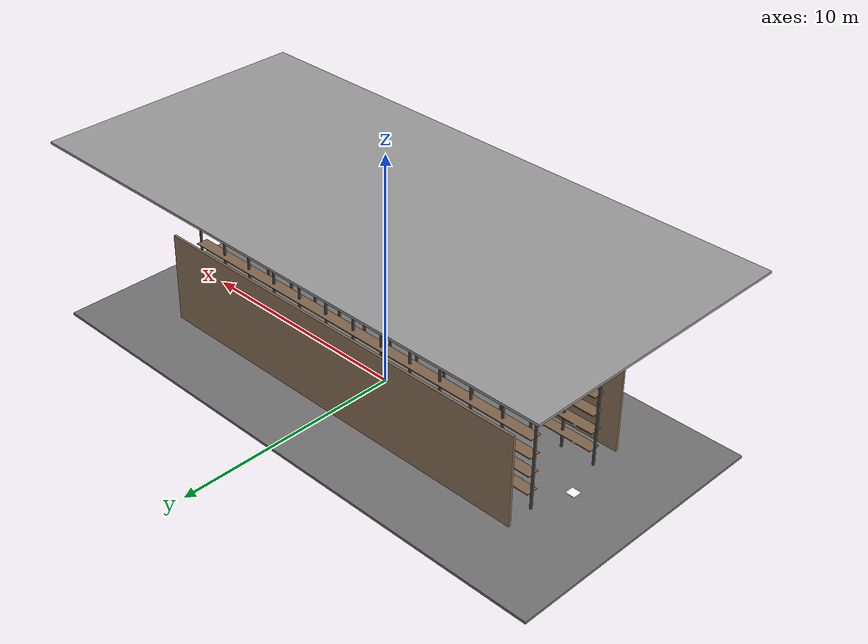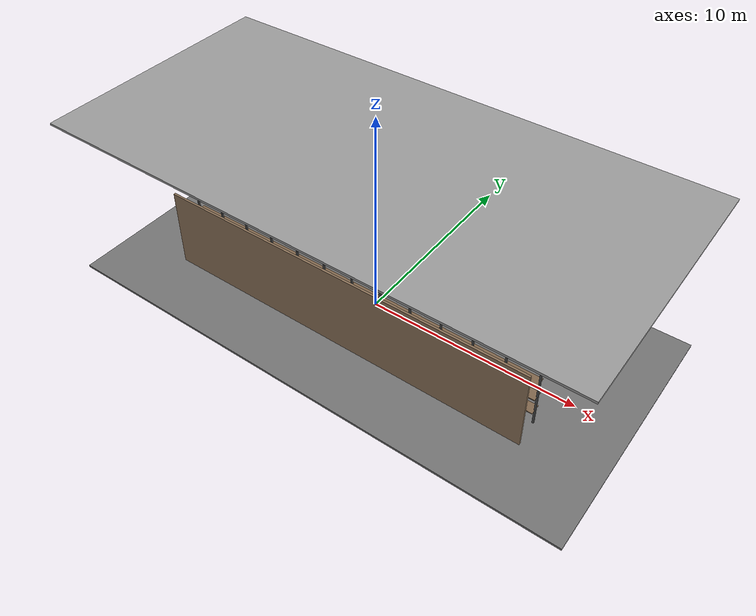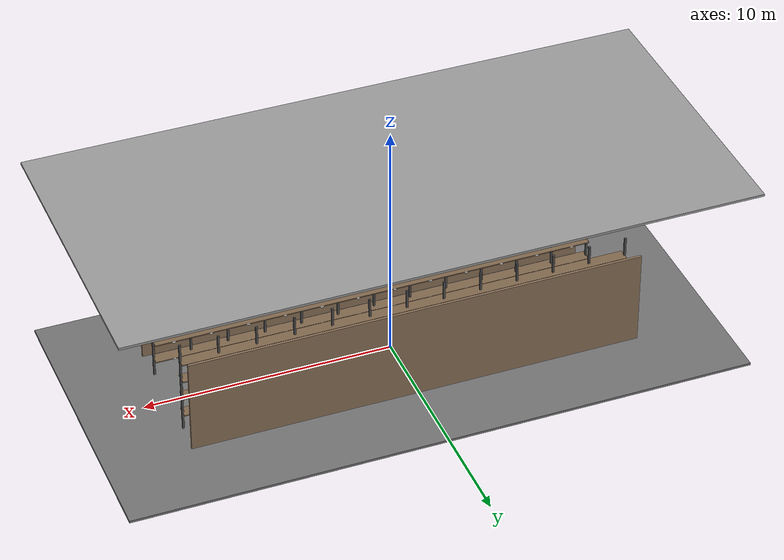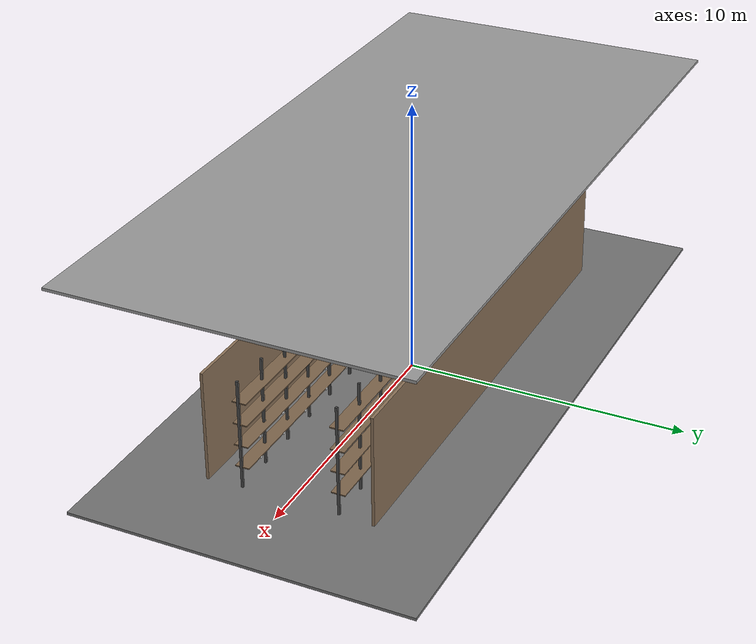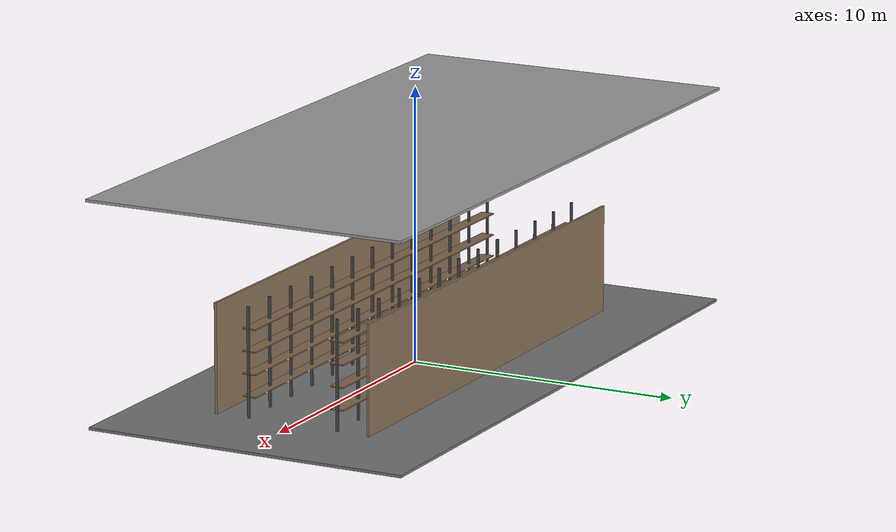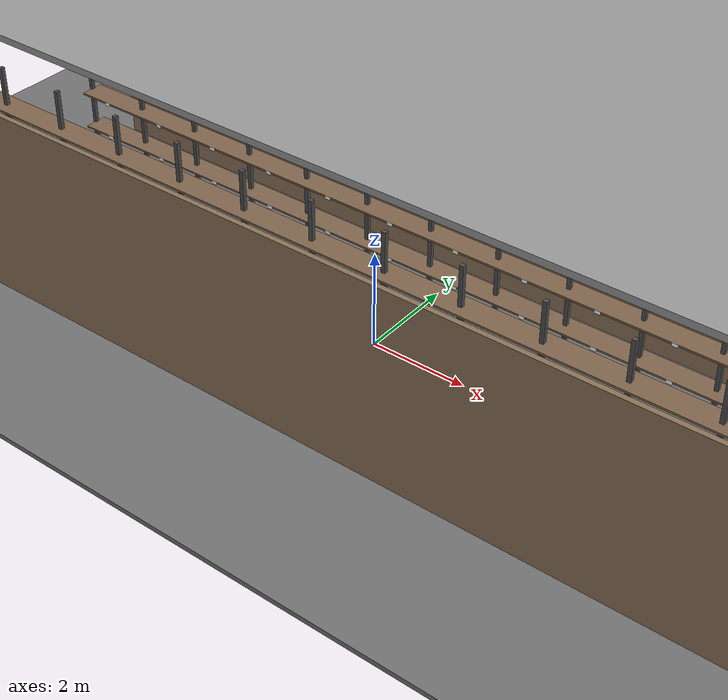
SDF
<?xml version="1.0" ?>
<sdf version="1.9">
  <world name="warehouse_phase0">

    <!-- ФИЗИКА -->
    <physics name="1ms" type="ignored">
      <max_step_size>0.001</max_step_size>
      <real_time_factor>1.0</real_time_factor>
    </physics>

    <gravity>0 0 -9.8</gravity>
    <magnetic_field>6e-06 2.3e-05 -4.2e-05</magnetic_field>
    <atmosphere type="adiabatic"/>

    <spherical_coordinates>
      <surface_model>EARTH_WGS84</surface_model>
      <world_frame_orientation>ENU</world_frame_orientation>
      <latitude_deg>47.397971057728974</latitude_deg>
      <longitude_deg>8.546163739800146</longitude_deg>
      <elevation>0</elevation>
    </spherical_coordinates>

    <!-- ПЛАГИНЫ -->
    <plugin filename="gz-sim-physics-system" name="gz::sim::systems::Physics"/>
    <plugin filename="gz-sim-user-commands-system" name="gz::sim::systems::UserCommands"/>
    <plugin filename="gz-sim-scene-broadcaster-system" name="gz::sim::systems::SceneBroadcaster"/>
    <plugin filename="gz-sim-sensors-system" name="gz::sim::systems::Sensors">
      <render_engine>ogre2</render_engine>
    </plugin>
    <plugin filename="gz-sim-imu-system" name="gz::sim::systems::Imu"/>
    <plugin filename="gz-sim-magnetometer-system" name="gz::sim::systems::Magnetometer"/>
    <plugin filename="gz-sim-air-pressure-system" name="gz::sim::systems::AirPressure"/>
    <plugin filename="gz-sim-navsat-system" name="gz::sim::systems::NavSat"/>

    <!-- ОСВЕЩЕНИЕ: 3 точечных лампы под потолком + ambient fill -->
    <light name="lamp_start" type="point">
      <pose>-5 0 7.5 0 0 0</pose><cast_shadows>true</cast_shadows><intensity>1.1</intensity>
      <diffuse>0.95 0.95 0.9 1</diffuse><specular>0.3 0.3 0.3 1</specular>
      <attenuation><range>16</range><constant>0.3</constant><linear>0.02</linear><quadratic>0.005</quadratic></attenuation>
    </light>
    <light name="lamp_center" type="point">
      <pose>0 0 7.5 0 0 0</pose><cast_shadows>false</cast_shadows><intensity>1.0</intensity>
      <diffuse>0.9 0.9 0.85 1</diffuse><specular>0.2 0.2 0.2 1</specular>
      <attenuation><range>16</range><constant>0.3</constant><linear>0.02</linear><quadratic>0.005</quadratic></attenuation>
    </light>
    <light name="lamp_end" type="point">
      <pose>5 0 7.5 0 0 0</pose><cast_shadows>false</cast_shadows><intensity>1.0</intensity>
      <diffuse>0.9 0.9 0.85 1</diffuse><specular>0.2 0.2 0.2 1</specular>
      <attenuation><range>16</range><constant>0.3</constant><linear>0.02</linear><quadratic>0.005</quadratic></attenuation>
    </light>
    <light name="ambient_fill" type="directional">
      <pose>0 0 10 0 0 0</pose><cast_shadows>false</cast_shadows><intensity>0.35</intensity>
      <direction>0 0 -1</direction><diffuse>0.55 0.55 0.55 1</diffuse><specular>0.05 0.05 0.05 1</specular>
    </light>

    <!-- ПОЛ 25x12м -->
    <model name="floor"><static>true</static><pose>0 0 0 0 0 0</pose>
      <link name="link">
        <collision name="col"><geometry><box><size>25 12 0.1</size></box></geometry></collision>
        <visual name="vis"><geometry><box><size>25 12 0.1</size></box></geometry>
          <material><ambient>0.35 0.35 0.35 1</ambient><diffuse>0.45 0.45 0.45 1</diffuse></material>
        </visual>
      </link>
    </model>

    <!-- ПОТОЛОК на высоте 8м -->
    <model name="ceiling"><static>true</static><pose>0 0 8 0 0 0</pose>
      <link name="link">
        <collision name="col"><geometry><box><size>25 12 0.1</size></box></geometry></collision>
        <visual name="vis"><geometry><box><size>25 12 0.1</size></box></geometry>
          <material><ambient>0.55 0.55 0.55 1</ambient><diffuse>0.6 0.6 0.6 1</diffuse></material>
        </visual>
      </link>
    </model>

    <!-- ===== ЛЕВЫЙ СТЕЛЛАЖ (Y > 0) ===== -->

    <!-- Задняя стена левого стеллажа -->
    <model name="rack_L_back"><static>true</static><pose>0 2.95 2.0 0 0 0</pose>
      <link name="link">
        <collision name="col"><geometry><box><size>18.2 0.1 4.0</size></box></geometry></collision>
        <visual name="vis"><geometry><box><size>18.2 0.1 4.0</size></box></geometry>
          <material><ambient>0.5 0.4 0.3 1</ambient><diffuse>0.55 0.45 0.35 1</diffuse></material>
        </visual>
      </link>
    </model>

    <!-- Горизонтальные полки левого стеллажа: 4 уровня -->
    <model name="shelf_L1"><static>true</static><pose>0 1.7 0.8 0 0 0</pose><link name="l">
      <collision name="c"><geometry><box><size>18 0.5 0.04</size></box></geometry></collision>
      <visual name="v"><geometry><box><size>18 0.5 0.04</size></box></geometry>
        <material><ambient>0.45 0.35 0.25 1</ambient><diffuse>0.5 0.4 0.3 1</diffuse></material></visual></link></model>
    <model name="shelf_L2"><static>true</static><pose>0 1.7 1.6 0 0 0</pose><link name="l">
      <collision name="c"><geometry><box><size>18 0.5 0.04</size></box></geometry></collision>
      <visual name="v"><geometry><box><size>18 0.5 0.04</size></box></geometry>
        <material><ambient>0.45 0.35 0.25 1</ambient><diffuse>0.5 0.4 0.3 1</diffuse></material></visual></link></model>
    <model name="shelf_L3"><static>true</static><pose>0 1.7 2.4 0 0 0</pose><link name="l">
      <collision name="c"><geometry><box><size>18 0.5 0.04</size></box></geometry></collision>
      <visual name="v"><geometry><box><size>18 0.5 0.04</size></box></geometry>
        <material><ambient>0.45 0.35 0.25 1</ambient><diffuse>0.5 0.4 0.3 1</diffuse></material></visual></link></model>
    <model name="shelf_L4"><static>true</static><pose>0 1.7 3.2 0 0 0</pose><link name="l">
      <collision name="c"><geometry><box><size>18 0.5 0.04</size></box></geometry></collision>
      <visual name="v"><geometry><box><size>18 0.5 0.04</size></box></geometry>
        <material><ambient>0.45 0.35 0.25 1</ambient><diffuse>0.5 0.4 0.3 1</diffuse></material></visual></link></model>

    <!-- Стойки левого стеллажа: 13 шт x шаг 1.5м -->
    <model name="pL0"> <static>true</static><pose>-9.0 1.72 2.0 0 0 0</pose><link name="l"><collision name="c"><geometry><box><size>0.08 0.08 4.0</size></box></geometry></collision><visual name="v"><geometry><box><size>0.08 0.08 4.0</size></box></geometry><material><ambient>0.25 0.25 0.25 1</ambient><diffuse>0.3 0.3 0.3 1</diffuse></material></visual></link></model>
    <model name="pL1"> <static>true</static><pose>-7.5 1.72 2.0 0 0 0</pose><link name="l"><collision name="c"><geometry><box><size>0.08 0.08 4.0</size></box></geometry></collision><visual name="v"><geometry><box><size>0.08 0.08 4.0</size></box></geometry><material><ambient>0.25 0.25 0.25 1</ambient><diffuse>0.3 0.3 0.3 1</diffuse></material></visual></link></model>
    <model name="pL2"> <static>true</static><pose>-6.0 1.72 2.0 0 0 0</pose><link name="l"><collision name="c"><geometry><box><size>0.08 0.08 4.0</size></box></geometry></collision><visual name="v"><geometry><box><size>0.08 0.08 4.0</size></box></geometry><material><ambient>0.25 0.25 0.25 1</ambient><diffuse>0.3 0.3 0.3 1</diffuse></material></visual></link></model>
    <model name="pL3"> <static>true</static><pose>-4.5 1.72 2.0 0 0 0</pose><link name="l"><collision name="c"><geometry><box><size>0.08 0.08 4.0</size></box></geometry></collision><visual name="v"><geometry><box><size>0.08 0.08 4.0</size></box></geometry><material><ambient>0.25 0.25 0.25 1</ambient><diffuse>0.3 0.3 0.3 1</diffuse></material></visual></link></model>
    <model name="pL4"> <static>true</static><pose>-3.0 1.72 2.0 0 0 0</pose><link name="l"><collision name="c"><geometry><box><size>0.08 0.08 4.0</size></box></geometry></collision><visual name="v"><geometry><box><size>0.08 0.08 4.0</size></box></geometry><material><ambient>0.25 0.25 0.25 1</ambient><diffuse>0.3 0.3 0.3 1</diffuse></material></visual></link></model>
    <model name="pL5"> <static>true</static><pose>-1.5 1.72 2.0 0 0 0</pose><link name="l"><collision name="c"><geometry><box><size>0.08 0.08 4.0</size></box></geometry></collision><visual name="v"><geometry><box><size>0.08 0.08 4.0</size></box></geometry><material><ambient>0.25 0.25 0.25 1</ambient><diffuse>0.3 0.3 0.3 1</diffuse></material></visual></link></model>
    <model name="pL6"> <static>true</static><pose> 0.0 1.72 2.0 0 0 0</pose><link name="l"><collision name="c"><geometry><box><size>0.08 0.08 4.0</size></box></geometry></collision><visual name="v"><geometry><box><size>0.08 0.08 4.0</size></box></geometry><material><ambient>0.25 0.25 0.25 1</ambient><diffuse>0.3 0.3 0.3 1</diffuse></material></visual></link></model>
    <model name="pL7"> <static>true</static><pose> 1.5 1.72 2.0 0 0 0</pose><link name="l"><collision name="c"><geometry><box><size>0.08 0.08 4.0</size></box></geometry></collision><visual name="v"><geometry><box><size>0.08 0.08 4.0</size></box></geometry><material><ambient>0.25 0.25 0.25 1</ambient><diffuse>0.3 0.3 0.3 1</diffuse></material></visual></link></model>
    <model name="pL8"> <static>true</static><pose> 3.0 1.72 2.0 0 0 0</pose><link name="l"><collision name="c"><geometry><box><size>0.08 0.08 4.0</size></box></geometry></collision><visual name="v"><geometry><box><size>0.08 0.08 4.0</size></box></geometry><material><ambient>0.25 0.25 0.25 1</ambient><diffuse>0.3 0.3 0.3 1</diffuse></material></visual></link></model>
    <model name="pL9"> <static>true</static><pose> 4.5 1.72 2.0 0 0 0</pose><link name="l"><collision name="c"><geometry><box><size>0.08 0.08 4.0</size></box></geometry></collision><visual name="v"><geometry><box><size>0.08 0.08 4.0</size></box></geometry><material><ambient>0.25 0.25 0.25 1</ambient><diffuse>0.3 0.3 0.3 1</diffuse></material></visual></link></model>
    <model name="pL10"><static>true</static><pose> 6.0 1.72 2.0 0 0 0</pose><link name="l"><collision name="c"><geometry><box><size>0.08 0.08 4.0</size></box></geometry></collision><visual name="v"><geometry><box><size>0.08 0.08 4.0</size></box></geometry><material><ambient>0.25 0.25 0.25 1</ambient><diffuse>0.3 0.3 0.3 1</diffuse></material></visual></link></model>
    <model name="pL11"><static>true</static><pose> 7.5 1.72 2.0 0 0 0</pose><link name="l"><collision name="c"><geometry><box><size>0.08 0.08 4.0</size></box></geometry></collision><visual name="v"><geometry><box><size>0.08 0.08 4.0</size></box></geometry><material><ambient>0.25 0.25 0.25 1</ambient><diffuse>0.3 0.3 0.3 1</diffuse></material></visual></link></model>
    <model name="pL12"><static>true</static><pose> 9.0 1.72 2.0 0 0 0</pose><link name="l"><collision name="c"><geometry><box><size>0.08 0.08 4.0</size></box></geometry></collision><visual name="v"><geometry><box><size>0.08 0.08 4.0</size></box></geometry><material><ambient>0.25 0.25 0.25 1</ambient><diffuse>0.3 0.3 0.3 1</diffuse></material></visual></link></model>

    <!-- Штрихкоды левого стеллажа — уровень 1 (Z=0.8м) -->
            <model name="bcL_1_1"><static>true</static><pose>-8.25 1.43 0.8 0 0 0</pose>
      <link name="l">
        <visual name="v">
          <geometry><box><size>0.12 0.005 0.07</size></box></geometry>
          <material>
            <ambient>1 1 1 1</ambient>
            <diffuse>1 1 1 1</diffuse>
            <pbr>
              <metal>
                <albedo_map>/home/imuzolev/gz_barcodes/barcode_L_01_1.png</albedo_map>
                <metalness>0.0</metalness>
                <roughness>1.0</roughness>
              </metal>
            </pbr>
          </material>
        </visual>
      </link>
    </model>
            <model name="bcL_2_1"><static>true</static><pose>-6.75 1.43 0.8 0 0 0</pose>
      <link name="l">
        <visual name="v">
          <geometry><box><size>0.12 0.005 0.07</size></box></geometry>
          <material>
            <ambient>1 1 1 1</ambient>
            <diffuse>1 1 1 1</diffuse>
            <pbr>
              <metal>
                <albedo_map>/home/imuzolev/gz_barcodes/barcode_L_02_1.png</albedo_map>
                <metalness>0.0</metalness>
                <roughness>1.0</roughness>
              </metal>
            </pbr>
          </material>
        </visual>
      </link>
    </model>
            <model name="bcL_3_1"><static>true</static><pose>-5.25 1.43 0.8 0 0 0</pose>
      <link name="l">
        <visual name="v">
          <geometry><box><size>0.12 0.005 0.07</size></box></geometry>
          <material>
            <ambient>1 1 1 1</ambient>
            <diffuse>1 1 1 1</diffuse>
            <pbr>
              <metal>
                <albedo_map>/home/imuzolev/gz_barcodes/barcode_L_03_1.png</albedo_map>
                <metalness>0.0</metalness>
                <roughness>1.0</roughness>
              </metal>
            </pbr>
          </material>
        </visual>
      </link>
    </model>
            <model name="bcL_4_1"><static>true</static><pose>-3.75 1.43 0.8 0 0 0</pose>
      <link name="l">
        <visual name="v">
          <geometry><box><size>0.12 0.005 0.07</size></box></geometry>
          <material>
            <ambient>1 1 1 1</ambient>
            <diffuse>1 1 1 1</diffuse>
            <pbr>
              <metal>
                <albedo_map>/home/imuzolev/gz_barcodes/barcode_L_04_1.png</albedo_map>
                <metalness>0.0</metalness>
                <roughness>1.0</roughness>
              </metal>
            </pbr>
          </material>
        </visual>
      </link>
    </model>
            <model name="bcL_5_1"><static>true</static><pose>-2.25 1.43 0.8 0 0 0</pose>
      <link name="l">
        <visual name="v">
          <geometry><box><size>0.12 0.005 0.07</size></box></geometry>
          <material>
            <ambient>1 1 1 1</ambient>
            <diffuse>1 1 1 1</diffuse>
            <pbr>
              <metal>
                <albedo_map>/home/imuzolev/gz_barcodes/barcode_L_05_1.png</albedo_map>
                <metalness>0.0</metalness>
                <roughness>1.0</roughness>
              </metal>
            </pbr>
          </material>
        </visual>
      </link>
    </model>
            <model name="bcL_6_1"><static>true</static><pose>-0.75 1.43 0.8 0 0 0</pose>
      <link name="l">
        <visual name="v">
          <geometry><box><size>0.12 0.005 0.07</size></box></geometry>
          <material>
            <ambient>1 1 1 1</ambient>
            <diffuse>1 1 1 1</diffuse>
            <pbr>
              <metal>
                <albedo_map>/home/imuzolev/gz_barcodes/barcode_L_06_1.png</albedo_map>
                <metalness>0.0</metalness>
                <roughness>1.0</roughness>
              </metal>
            </pbr>
          </material>
        </visual>
      </link>
    </model>
            <model name="bcL_7_1"><static>true</static><pose>0.75 1.43 0.8 0 0 0</pose>
      <link name="l">
        <visual name="v">
          <geometry><box><size>0.12 0.005 0.07</size></box></geometry>
          <material>
            <ambient>1 1 1 1</ambient>
            <diffuse>1 1 1 1</diffuse>
            <pbr>
              <metal>
                <albedo_map>/home/imuzolev/gz_barcodes/barcode_L_07_1.png</albedo_map>
                <metalness>0.0</metalness>
                <roughness>1.0</roughness>
              </metal>
            </pbr>
          </material>
        </visual>
      </link>
    </model>
            <model name="bcL_8_1"><static>true</static><pose>2.25 1.43 0.8 0 0 0</pose>
      <link name="l">
        <visual name="v">
          <geometry><box><size>0.12 0.005 0.07</size></box></geometry>
          <material>
            <ambient>1 1 1 1</ambient>
            <diffuse>1 1 1 1</diffuse>
            <pbr>
              <metal>
                <albedo_map>/home/imuzolev/gz_barcodes/barcode_L_08_1.png</albedo_map>
                <metalness>0.0</metalness>
                <roughness>1.0</roughness>
              </metal>
            </pbr>
          </material>
        </visual>
      </link>
    </model>
            <model name="bcL_9_1"><static>true</static><pose>3.75 1.43 0.8 0 0 0</pose>
      <link name="l">
        <visual name="v">
          <geometry><box><size>0.12 0.005 0.07</size></box></geometry>
          <material>
            <ambient>1 1 1 1</ambient>
            <diffuse>1 1 1 1</diffuse>
            <pbr>
              <metal>
                <albedo_map>/home/imuzolev/gz_barcodes/barcode_L_09_1.png</albedo_map>
                <metalness>0.0</metalness>
                <roughness>1.0</roughness>
              </metal>
            </pbr>
          </material>
        </visual>
      </link>
    </model>
            <model name="bcL_10_1"><static>true</static><pose>5.25 1.43 0.8 0 0 0</pose>
      <link name="l">
        <visual name="v">
          <geometry><box><size>0.12 0.005 0.07</size></box></geometry>
          <material>
            <ambient>1 1 1 1</ambient>
            <diffuse>1 1 1 1</diffuse>
            <pbr>
              <metal>
                <albedo_map>/home/imuzolev/gz_barcodes/barcode_L_10_1.png</albedo_map>
                <metalness>0.0</metalness>
                <roughness>1.0</roughness>
              </metal>
            </pbr>
          </material>
        </visual>
      </link>
    </model>
            <model name="bcL_11_1"><static>true</static><pose>6.75 1.43 0.8 0 0 0</pose>
      <link name="l">
        <visual name="v">
          <geometry><box><size>0.12 0.005 0.07</size></box></geometry>
          <material>
            <ambient>1 1 1 1</ambient>
            <diffuse>1 1 1 1</diffuse>
            <pbr>
              <metal>
                <albedo_map>/home/imuzolev/gz_barcodes/barcode_L_11_1.png</albedo_map>
                <metalness>0.0</metalness>
                <roughness>1.0</roughness>
              </metal>
            </pbr>
          </material>
        </visual>
      </link>
    </model>
            <model name="bcL_12_1"><static>true</static><pose>8.25 1.43 0.8 0 0 0</pose>
      <link name="l">
        <visual name="v">
          <geometry><box><size>0.12 0.005 0.07</size></box></geometry>
          <material>
            <ambient>1 1 1 1</ambient>
            <diffuse>1 1 1 1</diffuse>
            <pbr>
              <metal>
                <albedo_map>/home/imuzolev/gz_barcodes/barcode_L_12_1.png</albedo_map>
                <metalness>0.0</metalness>
                <roughness>1.0</roughness>
              </metal>
            </pbr>
          </material>
        </visual>
      </link>
    </model>

    <!-- Штрихкоды левого стеллажа — уровень 2 (Z=1.6м) -->
            <model name="bcL_1_2"><static>true</static><pose>-8.25 1.43 1.6 0 0 0</pose>
      <link name="l">
        <visual name="v">
          <geometry><box><size>0.12 0.005 0.07</size></box></geometry>
          <material>
            <ambient>1 1 1 1</ambient>
            <diffuse>1 1 1 1</diffuse>
            <pbr>
              <metal>
                <albedo_map>/home/imuzolev/gz_barcodes/barcode_L_01_2.png</albedo_map>
                <metalness>0.0</metalness>
                <roughness>1.0</roughness>
              </metal>
            </pbr>
          </material>
        </visual>
      </link>
    </model>
            <model name="bcL_2_2"><static>true</static><pose>-6.75 1.43 1.6 0 0 0</pose>
      <link name="l">
        <visual name="v">
          <geometry><box><size>0.12 0.005 0.07</size></box></geometry>
          <material>
            <ambient>1 1 1 1</ambient>
            <diffuse>1 1 1 1</diffuse>
            <pbr>
              <metal>
                <albedo_map>/home/imuzolev/gz_barcodes/barcode_L_02_2.png</albedo_map>
                <metalness>0.0</metalness>
                <roughness>1.0</roughness>
              </metal>
            </pbr>
          </material>
        </visual>
      </link>
    </model>
            <model name="bcL_3_2"><static>true</static><pose>-5.25 1.43 1.6 0 0 0</pose>
      <link name="l">
        <visual name="v">
          <geometry><box><size>0.12 0.005 0.07</size></box></geometry>
          <material>
            <ambient>1 1 1 1</ambient>
            <diffuse>1 1 1 1</diffuse>
            <pbr>
              <metal>
                <albedo_map>/home/imuzolev/gz_barcodes/barcode_L_03_2.png</albedo_map>
                <metalness>0.0</metalness>
                <roughness>1.0</roughness>
              </metal>
            </pbr>
          </material>
        </visual>
      </link>
    </model>
            <model name="bcL_4_2"><static>true</static><pose>-3.75 1.43 1.6 0 0 0</pose>
      <link name="l">
        <visual name="v">
          <geometry><box><size>0.12 0.005 0.07</size></box></geometry>
          <material>
            <ambient>1 1 1 1</ambient>
            <diffuse>1 1 1 1</diffuse>
            <pbr>
              <metal>
                <albedo_map>/home/imuzolev/gz_barcodes/barcode_L_04_2.png</albedo_map>
                <metalness>0.0</metalness>
                <roughness>1.0</roughness>
              </metal>
            </pbr>
          </material>
        </visual>
      </link>
    </model>
            <model name="bcL_5_2"><static>true</static><pose>-2.25 1.43 1.6 0 0 0</pose>
      <link name="l">
        <visual name="v">
          <geometry><box><size>0.12 0.005 0.07</size></box></geometry>
          <material>
            <ambient>1 1 1 1</ambient>
            <diffuse>1 1 1 1</diffuse>
            <pbr>
              <metal>
                <albedo_map>/home/imuzolev/gz_barcodes/barcode_L_05_2.png</albedo_map>
                <metalness>0.0</metalness>
                <roughness>1.0</roughness>
              </metal>
            </pbr>
          </material>
        </visual>
      </link>
    </model>
            <model name="bcL_6_2"><static>true</static><pose>-0.75 1.43 1.6 0 0 0</pose>
      <link name="l">
        <visual name="v">
          <geometry><box><size>0.12 0.005 0.07</size></box></geometry>
          <material>
            <ambient>1 1 1 1</ambient>
            <diffuse>1 1 1 1</diffuse>
            <pbr>
              <metal>
                <albedo_map>/home/imuzolev/gz_barcodes/barcode_L_06_2.png</albedo_map>
                <metalness>0.0</metalness>
                <roughness>1.0</roughness>
              </metal>
            </pbr>
          </material>
        </visual>
      </link>
    </model>
            <model name="bcL_7_2"><static>true</static><pose>0.75 1.43 1.6 0 0 0</pose>
      <link name="l">
        <visual name="v">
          <geometry><box><size>0.12 0.005 0.07</size></box></geometry>
          <material>
            <ambient>1 1 1 1</ambient>
            <diffuse>1 1 1 1</diffuse>
            <pbr>
              <metal>
                <albedo_map>/home/imuzolev/gz_barcodes/barcode_L_07_2.png</albedo_map>
                <metalness>0.0</metalness>
                <roughness>1.0</roughness>
              </metal>
            </pbr>
          </material>
        </visual>
      </link>
    </model>
            <model name="bcL_8_2"><static>true</static><pose>2.25 1.43 1.6 0 0 0</pose>
      <link name="l">
        <visual name="v">
          <geometry><box><size>0.12 0.005 0.07</size></box></geometry>
          <material>
            <ambient>1 1 1 1</ambient>
            <diffuse>1 1 1 1</diffuse>
            <pbr>
              <metal>
                <albedo_map>/home/imuzolev/gz_barcodes/barcode_L_08_2.png</albedo_map>
                <metalness>0.0</metalness>
                <roughness>1.0</roughness>
              </metal>
            </pbr>
          </material>
        </visual>
      </link>
    </model>
            <model name="bcL_9_2"><static>true</static><pose>3.75 1.43 1.6 0 0 0</pose>
      <link name="l">
        <visual name="v">
          <geometry><box><size>0.12 0.005 0.07</size></box></geometry>
          <material>
            <ambient>1 1 1 1</ambient>
            <diffuse>1 1 1 1</diffuse>
            <pbr>
              <metal>
                <albedo_map>/home/imuzolev/gz_barcodes/barcode_L_09_2.png</albedo_map>
                <metalness>0.0</metalness>
                <roughness>1.0</roughness>
              </metal>
            </pbr>
          </material>
        </visual>
      </link>
    </model>
            <model name="bcL_10_2"><static>true</static><pose>5.25 1.43 1.6 0 0 0</pose>
      <link name="l">
        <visual name="v">
          <geometry><box><size>0.12 0.005 0.07</size></box></geometry>
          <material>
            <ambient>1 1 1 1</ambient>
            <diffuse>1 1 1 1</diffuse>
            <pbr>
              <metal>
                <albedo_map>/home/imuzolev/gz_barcodes/barcode_L_10_2.png</albedo_map>
                <metalness>0.0</metalness>
                <roughness>1.0</roughness>
              </metal>
            </pbr>
          </material>
        </visual>
      </link>
    </model>
            <model name="bcL_11_2"><static>true</static><pose>6.75 1.43 1.6 0 0 0</pose>
      <link name="l">
        <visual name="v">
          <geometry><box><size>0.12 0.005 0.07</size></box></geometry>
          <material>
            <ambient>1 1 1 1</ambient>
            <diffuse>1 1 1 1</diffuse>
            <pbr>
              <metal>
                <albedo_map>/home/imuzolev/gz_barcodes/barcode_L_11_2.png</albedo_map>
                <metalness>0.0</metalness>
                <roughness>1.0</roughness>
              </metal>
            </pbr>
          </material>
        </visual>
      </link>
    </model>
            <model name="bcL_12_2"><static>true</static><pose>8.25 1.43 1.6 0 0 0</pose>
      <link name="l">
        <visual name="v">
          <geometry><box><size>0.12 0.005 0.07</size></box></geometry>
          <material>
            <ambient>1 1 1 1</ambient>
            <diffuse>1 1 1 1</diffuse>
            <pbr>
              <metal>
                <albedo_map>/home/imuzolev/gz_barcodes/barcode_L_12_2.png</albedo_map>
                <metalness>0.0</metalness>
                <roughness>1.0</roughness>
              </metal>
            </pbr>
          </material>
        </visual>
      </link>
    </model>

    <!-- ===== ПРАВЫЙ СТЕЛЛАЖ (Y < 0) ===== -->

    <model name="rack_R_back"><static>true</static><pose>0 -2.95 2.0 0 0 0</pose>
      <link name="link">
        <collision name="col"><geometry><box><size>18.2 0.1 4.0</size></box></geometry></collision>
        <visual name="vis"><geometry><box><size>18.2 0.1 4.0</size></box></geometry>
          <material><ambient>0.5 0.4 0.3 1</ambient><diffuse>0.55 0.45 0.35 1</diffuse></material>
        </visual>
      </link>
    </model>

    <model name="shelf_R1"><static>true</static><pose>0 -1.7 0.8 0 0 0</pose><link name="l">
      <collision name="c"><geometry><box><size>18 0.5 0.04</size></box></geometry></collision>
      <visual name="v"><geometry><box><size>18 0.5 0.04</size></box></geometry>
        <material><ambient>0.45 0.35 0.25 1</ambient><diffuse>0.5 0.4 0.3 1</diffuse></material></visual></link></model>
    <model name="shelf_R2"><static>true</static><pose>0 -1.7 1.6 0 0 0</pose><link name="l">
      <collision name="c"><geometry><box><size>18 0.5 0.04</size></box></geometry></collision>
      <visual name="v"><geometry><box><size>18 0.5 0.04</size></box></geometry>
        <material><ambient>0.45 0.35 0.25 1</ambient><diffuse>0.5 0.4 0.3 1</diffuse></material></visual></link></model>
    <model name="shelf_R3"><static>true</static><pose>0 -1.7 2.4 0 0 0</pose><link name="l">
      <collision name="c"><geometry><box><size>18 0.5 0.04</size></box></geometry></collision>
      <visual name="v"><geometry><box><size>18 0.5 0.04</size></box></geometry>
        <material><ambient>0.45 0.35 0.25 1</ambient><diffuse>0.5 0.4 0.3 1</diffuse></material></visual></link></model>
    <model name="shelf_R4"><static>true</static><pose>0 -1.7 3.2 0 0 0</pose><link name="l">
      <collision name="c"><geometry><box><size>18 0.5 0.04</size></box></geometry></collision>
      <visual name="v"><geometry><box><size>18 0.5 0.04</size></box></geometry>
        <material><ambient>0.45 0.35 0.25 1</ambient><diffuse>0.5 0.4 0.3 1</diffuse></material></visual></link></model>

    <!-- Стойки правого стеллажа: 13 шт -->
    <model name="pR0"> <static>true</static><pose>-9.0 -1.72 2.0 0 0 0</pose><link name="l"><collision name="c"><geometry><box><size>0.08 0.08 4.0</size></box></geometry></collision><visual name="v"><geometry><box><size>0.08 0.08 4.0</size></box></geometry><material><ambient>0.25 0.25 0.25 1</ambient><diffuse>0.3 0.3 0.3 1</diffuse></material></visual></link></model>
    <model name="pR1"> <static>true</static><pose>-7.5 -1.72 2.0 0 0 0</pose><link name="l"><collision name="c"><geometry><box><size>0.08 0.08 4.0</size></box></geometry></collision><visual name="v"><geometry><box><size>0.08 0.08 4.0</size></box></geometry><material><ambient>0.25 0.25 0.25 1</ambient><diffuse>0.3 0.3 0.3 1</diffuse></material></visual></link></model>
    <model name="pR2"> <static>true</static><pose>-6.0 -1.72 2.0 0 0 0</pose><link name="l"><collision name="c"><geometry><box><size>0.08 0.08 4.0</size></box></geometry></collision><visual name="v"><geometry><box><size>0.08 0.08 4.0</size></box></geometry><material><ambient>0.25 0.25 0.25 1</ambient><diffuse>0.3 0.3 0.3 1</diffuse></material></visual></link></model>
    <model name="pR3"> <static>true</static><pose>-4.5 -1.72 2.0 0 0 0</pose><link name="l"><collision name="c"><geometry><box><size>0.08 0.08 4.0</size></box></geometry></collision><visual name="v"><geometry><box><size>0.08 0.08 4.0</size></box></geometry><material><ambient>0.25 0.25 0.25 1</ambient><diffuse>0.3 0.3 0.3 1</diffuse></material></visual></link></model>
    <model name="pR4"> <static>true</static><pose>-3.0 -1.72 2.0 0 0 0</pose><link name="l"><collision name="c"><geometry><box><size>0.08 0.08 4.0</size></box></geometry></collision><visual name="v"><geometry><box><size>0.08 0.08 4.0</size></box></geometry><material><ambient>0.25 0.25 0.25 1</ambient><diffuse>0.3 0.3 0.3 1</diffuse></material></visual></link></model>
    <model name="pR5"> <static>true</static><pose>-1.5 -1.72 2.0 0 0 0</pose><link name="l"><collision name="c"><geometry><box><size>0.08 0.08 4.0</size></box></geometry></collision><visual name="v"><geometry><box><size>0.08 0.08 4.0</size></box></geometry><material><ambient>0.25 0.25 0.25 1</ambient><diffuse>0.3 0.3 0.3 1</diffuse></material></visual></link></model>
    <model name="pR6"> <static>true</static><pose> 0.0 -1.72 2.0 0 0 0</pose><link name="l"><collision name="c"><geometry><box><size>0.08 0.08 4.0</size></box></geometry></collision><visual name="v"><geometry><box><size>0.08 0.08 4.0</size></box></geometry><material><ambient>0.25 0.25 0.25 1</ambient><diffuse>0.3 0.3 0.3 1</diffuse></material></visual></link></model>
    <model name="pR7"> <static>true</static><pose> 1.5 -1.72 2.0 0 0 0</pose><link name="l"><collision name="c"><geometry><box><size>0.08 0.08 4.0</size></box></geometry></collision><visual name="v"><geometry><box><size>0.08 0.08 4.0</size></box></geometry><material><ambient>0.25 0.25 0.25 1</ambient><diffuse>0.3 0.3 0.3 1</diffuse></material></visual></link></model>
    <model name="pR8"> <static>true</static><pose> 3.0 -1.72 2.0 0 0 0</pose><link name="l"><collision name="c"><geometry><box><size>0.08 0.08 4.0</size></box></geometry></collision><visual name="v"><geometry><box><size>0.08 0.08 4.0</size></box></geometry><material><ambient>0.25 0.25 0.25 1</ambient><diffuse>0.3 0.3 0.3 1</diffuse></material></visual></link></model>
    <model name="pR9"> <static>true</static><pose> 4.5 -1.72 2.0 0 0 0</pose><link name="l"><collision name="c"><geometry><box><size>0.08 0.08 4.0</size></box></geometry></collision><visual name="v"><geometry><box><size>0.08 0.08 4.0</size></box></geometry><material><ambient>0.25 0.25 0.25 1</ambient><diffuse>0.3 0.3 0.3 1</diffuse></material></visual></link></model>
    <model name="pR10"><static>true</static><pose> 6.0 -1.72 2.0 0 0 0</pose><link name="l"><collision name="c"><geometry><box><size>0.08 0.08 4.0</size></box></geometry></collision><visual name="v"><geometry><box><size>0.08 0.08 4.0</size></box></geometry><material><ambient>0.25 0.25 0.25 1</ambient><diffuse>0.3 0.3 0.3 1</diffuse></material></visual></link></model>
    <model name="pR11"><static>true</static><pose> 7.5 -1.72 2.0 0 0 0</pose><link name="l"><collision name="c"><geometry><box><size>0.08 0.08 4.0</size></box></geometry></collision><visual name="v"><geometry><box><size>0.08 0.08 4.0</size></box></geometry><material><ambient>0.25 0.25 0.25 1</ambient><diffuse>0.3 0.3 0.3 1</diffuse></material></visual></link></model>
    <model name="pR12"><static>true</static><pose> 9.0 -1.72 2.0 0 0 0</pose><link name="l"><collision name="c"><geometry><box><size>0.08 0.08 4.0</size></box></geometry></collision><visual name="v"><geometry><box><size>0.08 0.08 4.0</size></box></geometry><material><ambient>0.25 0.25 0.25 1</ambient><diffuse>0.3 0.3 0.3 1</diffuse></material></visual></link></model>

    <!-- Штрихкоды правого стеллажа — уровень 1 (Z=0.8м) -->
            <model name="bcR_1_1"><static>true</static><pose>-8.25 -1.43 0.8 0 0 0</pose>
      <link name="l">
        <visual name="v">
          <geometry><box><size>0.12 0.005 0.07</size></box></geometry>
          <material>
            <ambient>1 1 1 1</ambient>
            <diffuse>1 1 1 1</diffuse>
            <pbr>
              <metal>
                <albedo_map>/home/imuzolev/gz_barcodes/barcode_R_01_1.png</albedo_map>
                <metalness>0.0</metalness>
                <roughness>1.0</roughness>
              </metal>
            </pbr>
          </material>
        </visual>
      </link>
    </model>
            <model name="bcR_2_1"><static>true</static><pose>-6.75 -1.43 0.8 0 0 0</pose>
      <link name="l">
        <visual name="v">
          <geometry><box><size>0.12 0.005 0.07</size></box></geometry>
          <material>
            <ambient>1 1 1 1</ambient>
            <diffuse>1 1 1 1</diffuse>
            <pbr>
              <metal>
                <albedo_map>/home/imuzolev/gz_barcodes/barcode_R_02_1.png</albedo_map>
                <metalness>0.0</metalness>
                <roughness>1.0</roughness>
              </metal>
            </pbr>
          </material>
        </visual>
      </link>
    </model>
            <model name="bcR_3_1"><static>true</static><pose>-5.25 -1.43 0.8 0 0 0</pose>
      <link name="l">
        <visual name="v">
          <geometry><box><size>0.12 0.005 0.07</size></box></geometry>
          <material>
            <ambient>1 1 1 1</ambient>
            <diffuse>1 1 1 1</diffuse>
            <pbr>
              <metal>
                <albedo_map>/home/imuzolev/gz_barcodes/barcode_R_03_1.png</albedo_map>
                <metalness>0.0</metalness>
                <roughness>1.0</roughness>
              </metal>
            </pbr>
          </material>
        </visual>
      </link>
    </model>
            <model name="bcR_4_1"><static>true</static><pose>-3.75 -1.43 0.8 0 0 0</pose>
      <link name="l">
        <visual name="v">
          <geometry><box><size>0.12 0.005 0.07</size></box></geometry>
          <material>
            <ambient>1 1 1 1</ambient>
            <diffuse>1 1 1 1</diffuse>
            <pbr>
              <metal>
                <albedo_map>/home/imuzolev/gz_barcodes/barcode_R_04_1.png</albedo_map>
                <metalness>0.0</metalness>
                <roughness>1.0</roughness>
              </metal>
            </pbr>
          </material>
        </visual>
      </link>
    </model>
            <model name="bcR_5_1"><static>true</static><pose>-2.25 -1.43 0.8 0 0 0</pose>
      <link name="l">
        <visual name="v">
          <geometry><box><size>0.12 0.005 0.07</size></box></geometry>
          <material>
            <ambient>1 1 1 1</ambient>
            <diffuse>1 1 1 1</diffuse>
            <pbr>
              <metal>
                <albedo_map>/home/imuzolev/gz_barcodes/barcode_R_05_1.png</albedo_map>
                <metalness>0.0</metalness>
                <roughness>1.0</roughness>
              </metal>
            </pbr>
          </material>
        </visual>
      </link>
    </model>
            <model name="bcR_6_1"><static>true</static><pose>-0.75 -1.43 0.8 0 0 0</pose>
      <link name="l">
        <visual name="v">
          <geometry><box><size>0.12 0.005 0.07</size></box></geometry>
          <material>
            <ambient>1 1 1 1</ambient>
            <diffuse>1 1 1 1</diffuse>
            <pbr>
              <metal>
                <albedo_map>/home/imuzolev/gz_barcodes/barcode_R_06_1.png</albedo_map>
                <metalness>0.0</metalness>
                <roughness>1.0</roughness>
              </metal>
            </pbr>
          </material>
        </visual>
      </link>
    </model>
            <model name="bcR_7_1"><static>true</static><pose>0.75 -1.43 0.8 0 0 0</pose>
      <link name="l">
        <visual name="v">
          <geometry><box><size>0.12 0.005 0.07</size></box></geometry>
          <material>
            <ambient>1 1 1 1</ambient>
            <diffuse>1 1 1 1</diffuse>
            <pbr>
              <metal>
                <albedo_map>/home/imuzolev/gz_barcodes/barcode_R_07_1.png</albedo_map>
                <metalness>0.0</metalness>
                <roughness>1.0</roughness>
              </metal>
            </pbr>
          </material>
        </visual>
      </link>
    </model>
            <model name="bcR_8_1"><static>true</static><pose>2.25 -1.43 0.8 0 0 0</pose>
      <link name="l">
        <visual name="v">
          <geometry><box><size>0.12 0.005 0.07</size></box></geometry>
          <material>
            <ambient>1 1 1 1</ambient>
            <diffuse>1 1 1 1</diffuse>
            <pbr>
              <metal>
                <albedo_map>/home/imuzolev/gz_barcodes/barcode_R_08_1.png</albedo_map>
                <metalness>0.0</metalness>
                <roughness>1.0</roughness>
              </metal>
            </pbr>
          </material>
        </visual>
      </link>
    </model>
            <model name="bcR_9_1"><static>true</static><pose>3.75 -1.43 0.8 0 0 0</pose>
      <link name="l">
        <visual name="v">
          <geometry><box><size>0.12 0.005 0.07</size></box></geometry>
          <material>
            <ambient>1 1 1 1</ambient>
            <diffuse>1 1 1 1</diffuse>
            <pbr>
              <metal>
                <albedo_map>/home/imuzolev/gz_barcodes/barcode_R_09_1.png</albedo_map>
                <metalness>0.0</metalness>
                <roughness>1.0</roughness>
              </metal>
            </pbr>
          </material>
        </visual>
      </link>
    </model>
            <model name="bcR_10_1"><static>true</static><pose>5.25 -1.43 0.8 0 0 0</pose>
      <link name="l">
        <visual name="v">
          <geometry><box><size>0.12 0.005 0.07</size></box></geometry>
          <material>
            <ambient>1 1 1 1</ambient>
            <diffuse>1 1 1 1</diffuse>
            <pbr>
              <metal>
                <albedo_map>/home/imuzolev/gz_barcodes/barcode_R_10_1.png</albedo_map>
                <metalness>0.0</metalness>
                <roughness>1.0</roughness>
              </metal>
            </pbr>
          </material>
        </visual>
      </link>
    </model>
            <model name="bcR_11_1"><static>true</static><pose>6.75 -1.43 0.8 0 0 0</pose>
      <link name="l">
        <visual name="v">
          <geometry><box><size>0.12 0.005 0.07</size></box></geometry>
          <material>
            <ambient>1 1 1 1</ambient>
            <diffuse>1 1 1 1</diffuse>
            <pbr>
              <metal>
                <albedo_map>/home/imuzolev/gz_barcodes/barcode_R_11_1.png</albedo_map>
                <metalness>0.0</metalness>
                <roughness>1.0</roughness>
              </metal>
            </pbr>
          </material>
        </visual>
      </link>
    </model>
            <model name="bcR_12_1"><static>true</static><pose>8.25 -1.43 0.8 0 0 0</pose>
      <link name="l">
        <visual name="v">
          <geometry><box><size>0.12 0.005 0.07</size></box></geometry>
          <material>
            <ambient>1 1 1 1</ambient>
            <diffuse>1 1 1 1</diffuse>
            <pbr>
              <metal>
                <albedo_map>/home/imuzolev/gz_barcodes/barcode_R_12_1.png</albedo_map>
                <metalness>0.0</metalness>
                <roughness>1.0</roughness>
              </metal>
            </pbr>
          </material>
        </visual>
      </link>
    </model>

    <!-- Штрихкоды правого стеллажа — уровень 2 (Z=1.6м) -->
            <model name="bcR_1_2"><static>true</static><pose>-8.25 -1.43 1.6 0 0 0</pose>
      <link name="l">
        <visual name="v">
          <geometry><box><size>0.12 0.005 0.07</size></box></geometry>
          <material>
            <ambient>1 1 1 1</ambient>
            <diffuse>1 1 1 1</diffuse>
            <pbr>
              <metal>
                <albedo_map>/home/imuzolev/gz_barcodes/barcode_R_01_2.png</albedo_map>
                <metalness>0.0</metalness>
                <roughness>1.0</roughness>
              </metal>
            </pbr>
          </material>
        </visual>
      </link>
    </model>
            <model name="bcR_2_2"><static>true</static><pose>-6.75 -1.43 1.6 0 0 0</pose>
      <link name="l">
        <visual name="v">
          <geometry><box><size>0.12 0.005 0.07</size></box></geometry>
          <material>
            <ambient>1 1 1 1</ambient>
            <diffuse>1 1 1 1</diffuse>
            <pbr>
              <metal>
                <albedo_map>/home/imuzolev/gz_barcodes/barcode_R_02_2.png</albedo_map>
                <metalness>0.0</metalness>
                <roughness>1.0</roughness>
              </metal>
            </pbr>
          </material>
        </visual>
      </link>
    </model>
            <model name="bcR_3_2"><static>true</static><pose>-5.25 -1.43 1.6 0 0 0</pose>
      <link name="l">
        <visual name="v">
          <geometry><box><size>0.12 0.005 0.07</size></box></geometry>
          <material>
            <ambient>1 1 1 1</ambient>
            <diffuse>1 1 1 1</diffuse>
            <pbr>
              <metal>
                <albedo_map>/home/imuzolev/gz_barcodes/barcode_R_03_2.png</albedo_map>
                <metalness>0.0</metalness>
                <roughness>1.0</roughness>
              </metal>
            </pbr>
          </material>
        </visual>
      </link>
    </model>
            <model name="bcR_4_2"><static>true</static><pose>-3.75 -1.43 1.6 0 0 0</pose>
      <link name="l">
        <visual name="v">
          <geometry><box><size>0.12 0.005 0.07</size></box></geometry>
          <material>
            <ambient>1 1 1 1</ambient>
            <diffuse>1 1 1 1</diffuse>
            <pbr>
              <metal>
                <albedo_map>/home/imuzolev/gz_barcodes/barcode_R_04_2.png</albedo_map>
                <metalness>0.0</metalness>
                <roughness>1.0</roughness>
              </metal>
            </pbr>
          </material>
        </visual>
      </link>
    </model>
            <model name="bcR_5_2"><static>true</static><pose>-2.25 -1.43 1.6 0 0 0</pose>
      <link name="l">
        <visual name="v">
          <geometry><box><size>0.12 0.005 0.07</size></box></geometry>
          <material>
            <ambient>1 1 1 1</ambient>
            <diffuse>1 1 1 1</diffuse>
            <pbr>
              <metal>
                <albedo_map>/home/imuzolev/gz_barcodes/barcode_R_05_2.png</albedo_map>
                <metalness>0.0</metalness>
                <roughness>1.0</roughness>
              </metal>
            </pbr>
          </material>
        </visual>
      </link>
    </model>
            <model name="bcR_6_2"><static>true</static><pose>-0.75 -1.43 1.6 0 0 0</pose>
      <link name="l">
        <visual name="v">
          <geometry><box><size>0.12 0.005 0.07</size></box></geometry>
          <material>
            <ambient>1 1 1 1</ambient>
            <diffuse>1 1 1 1</diffuse>
            <pbr>
              <metal>
                <albedo_map>/home/imuzolev/gz_barcodes/barcode_R_06_2.png</albedo_map>
                <metalness>0.0</metalness>
                <roughness>1.0</roughness>
              </metal>
            </pbr>
          </material>
        </visual>
      </link>
    </model>
            <model name="bcR_7_2"><static>true</static><pose>0.75 -1.43 1.6 0 0 0</pose>
      <link name="l">
        <visual name="v">
          <geometry><box><size>0.12 0.005 0.07</size></box></geometry>
          <material>
            <ambient>1 1 1 1</ambient>
            <diffuse>1 1 1 1</diffuse>
            <pbr>
              <metal>
                <albedo_map>/home/imuzolev/gz_barcodes/barcode_R_07_2.png</albedo_map>
                <metalness>0.0</metalness>
                <roughness>1.0</roughness>
              </metal>
            </pbr>
          </material>
        </visual>
      </link>
    </model>
            <model name="bcR_8_2"><static>true</static><pose>2.25 -1.43 1.6 0 0 0</pose>
      <link name="l">
        <visual name="v">
          <geometry><box><size>0.12 0.005 0.07</size></box></geometry>
          <material>
            <ambient>1 1 1 1</ambient>
            <diffuse>1 1 1 1</diffuse>
            <pbr>
              <metal>
                <albedo_map>/home/imuzolev/gz_barcodes/barcode_R_08_2.png</albedo_map>
                <metalness>0.0</metalness>
                <roughness>1.0</roughness>
              </metal>
            </pbr>
          </material>
        </visual>
      </link>
    </model>
            <model name="bcR_9_2"><static>true</static><pose>3.75 -1.43 1.6 0 0 0</pose>
      <link name="l">
        <visual name="v">
          <geometry><box><size>0.12 0.005 0.07</size></box></geometry>
          <material>
            <ambient>1 1 1 1</ambient>
            <diffuse>1 1 1 1</diffuse>
            <pbr>
              <metal>
                <albedo_map>/home/imuzolev/gz_barcodes/barcode_R_09_2.png</albedo_map>
                <metalness>0.0</metalness>
                <roughness>1.0</roughness>
              </metal>
            </pbr>
          </material>
        </visual>
      </link>
    </model>
            <model name="bcR_10_2"><static>true</static><pose>5.25 -1.43 1.6 0 0 0</pose>
      <link name="l">
        <visual name="v">
          <geometry><box><size>0.12 0.005 0.07</size></box></geometry>
          <material>
            <ambient>1 1 1 1</ambient>
            <diffuse>1 1 1 1</diffuse>
            <pbr>
              <metal>
                <albedo_map>/home/imuzolev/gz_barcodes/barcode_R_10_2.png</albedo_map>
                <metalness>0.0</metalness>
                <roughness>1.0</roughness>
              </metal>
            </pbr>
          </material>
        </visual>
      </link>
    </model>
            <model name="bcR_11_2"><static>true</static><pose>6.75 -1.43 1.6 0 0 0</pose>
      <link name="l">
        <visual name="v">
          <geometry><box><size>0.12 0.005 0.07</size></box></geometry>
          <material>
            <ambient>1 1 1 1</ambient>
            <diffuse>1 1 1 1</diffuse>
            <pbr>
              <metal>
                <albedo_map>/home/imuzolev/gz_barcodes/barcode_R_11_2.png</albedo_map>
                <metalness>0.0</metalness>
                <roughness>1.0</roughness>
              </metal>
            </pbr>
          </material>
        </visual>
      </link>
    </model>
            <model name="bcR_12_2"><static>true</static><pose>8.25 -1.43 1.6 0 0 0</pose>
      <link name="l">
        <visual name="v">
          <geometry><box><size>0.12 0.005 0.07</size></box></geometry>
          <material>
            <ambient>1 1 1 1</ambient>
            <diffuse>1 1 1 1</diffuse>
            <pbr>
              <metal>
                <albedo_map>/home/imuzolev/gz_barcodes/barcode_R_12_2.png</albedo_map>
                <metalness>0.0</metalness>
                <roughness>1.0</roughness>
              </metal>
            </pbr>
          </material>
        </visual>
      </link>
    </model>

    <!-- AprilTag dock маркер на полу у старта (X=-9.5) -->
    <model name="dock_apriltag"><static>true</static><pose>-9.5 0 0.06 0 0 0</pose>
      <link name="link">
        <visual name="vis"><geometry><box><size>0.4 0.4 0.01</size></box></geometry>
          <material><ambient>1 1 1 1</ambient><diffuse>1 1 1 1</diffuse></material>
        </visual>
      </link>
    </model>

  </world>
</sdf>
